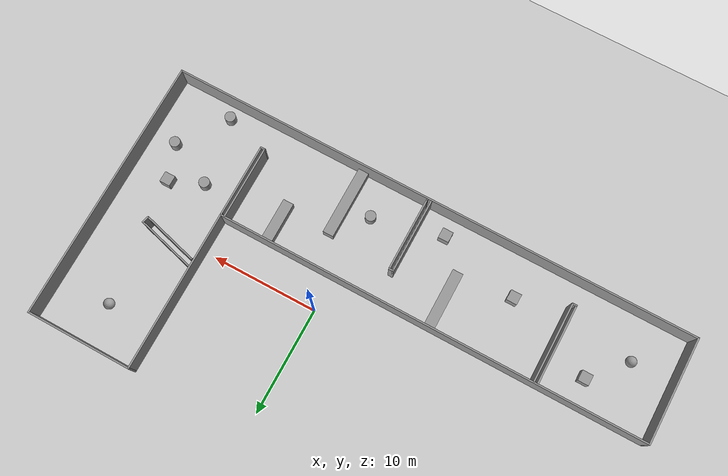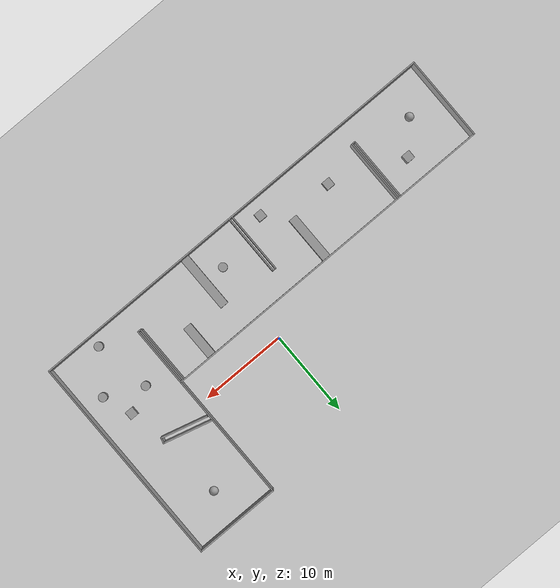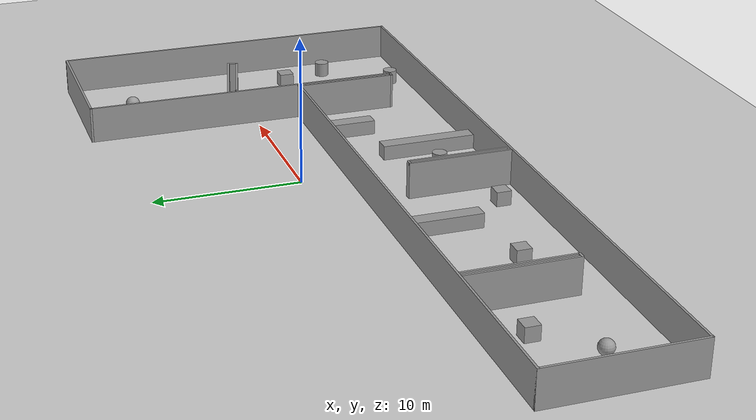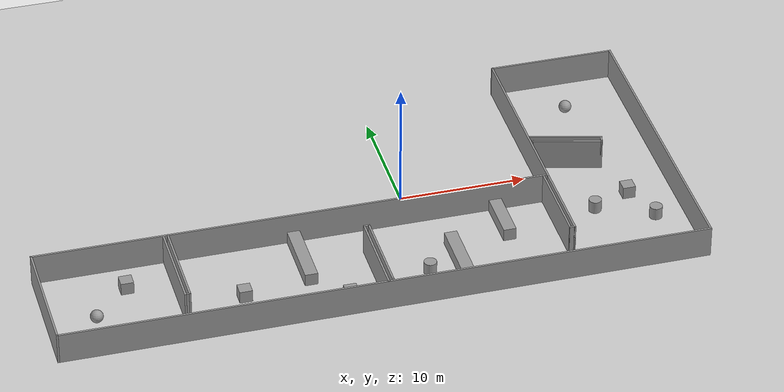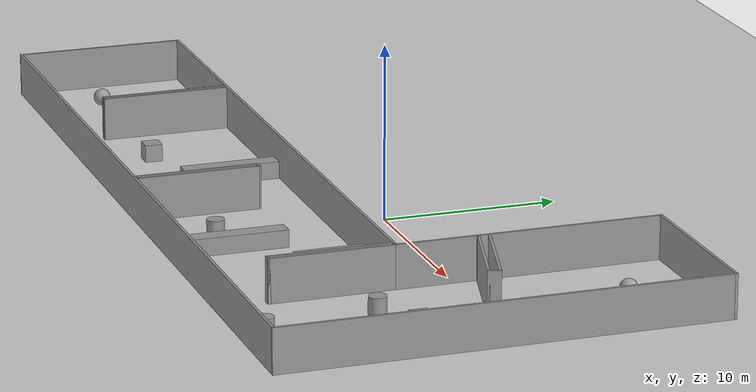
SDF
<sdf version="1.7">
 <world name="default">
  <light name="sun" type="directional">
   <pose>0 0 10 0 -0 0</pose>
   <diffuse>0.8 0.8 0.8 1</diffuse>
   <specular>0.2 0.2 0.2 1</specular>
   <attenuation>
    <range>1000</range>
    <constant>0.9</constant>
    <linear>0.01</linear>
    <quadratic>0.001</quadratic>
   </attenuation>
   <direction>-0.5 0.1 -0.9</direction>
   <spot><inner_angle>0</inner_angle><outer_angle>0</outer_angle><falloff>0</falloff></spot>
  </light>
  <model name="ground_plane">
   <static>1</static>
   <link name="link">
    <collision name="collision">
     <geometry><plane><normal>0 0 1</normal><size>100 100</size></plane></geometry>
     <surface><friction><ode><mu>100</mu><mu2>50</mu2></ode></friction></surface>
    </collision>
    <visual name="visual">
     <cast_shadows>0</cast_shadows>
     <geometry><plane><normal>0 0 1</normal><size>100 100</size></plane></geometry>
     <material>
      <script><uri>file://media/materials/scripts/gazebo.material</uri><name>Gazebo/Grey</name></script>
     </material>
    </visual>
   </link>
  </model>
  <gravity>0 0 -9.8</gravity>
  <magnetic_field>6e-06 2.3e-05 -4.2e-05</magnetic_field>
  <atmosphere type="adiabatic"/>
  <physics type="ode">
   <max_step_size>0.001</max_step_size>
   <real_time_factor>1</real_time_factor>
   <real_time_update_rate>1000</real_time_update_rate>
  </physics>
  <scene><ambient>0.4 0.4 0.4 1</ambient><background>0.7 0.7 0.7 1</background><shadows>1</shadows></scene>
  <spherical_coordinates>
   <surface_model>EARTH_WGS84</surface_model>
   <latitude_deg>0</latitude_deg>
   <longitude_deg>0</longitude_deg>
   <elevation>0</elevation>
   <heading_deg>0</heading_deg>
  </spherical_coordinates>
  <model name="world">
   <pose>-4.4237 -0.599 0 0 -0 0</pose>
   <link name="Wall_0">
    <collision name="Wall_0_Collision">
     <geometry><box><size>50.4595 0.15 2.5</size></box></geometry>
     <pose>0 0 1.25 0 -0 0</pose>
    </collision>
    <visual name="Wall_0_Visual">
     <pose>0 0 1.25 0 -0 0</pose>
     <geometry><box><size>50.4595 0.15 2.5</size></box></geometry>
     <material>
      <script><uri>file://media/materials/scripts/gazebo.material</uri><name>Gazebo/Grey</name></script>
      <ambient>1 1 1 1</ambient>
     </material>
     <meta><layer>0</layer></meta>
    </visual>
    <pose>0 -12.425 0 0 -0 0</pose>
   </link>
   <link name="Wall_1">
    <collision name="Wall_1_Collision">
     <geometry><box><size>25 0.15 2.5</size></box></geometry>
     <pose>0 0 1.25 0 -0 0</pose>
    </collision>
    <visual name="Wall_1_Visual">
     <pose>0 0 1.25 0 -0 0</pose>
     <geometry><box><size>25 0.15 2.5</size></box></geometry>
     <material>
      <script><uri>file://media/materials/scripts/gazebo.material</uri><name>Gazebo/Grey</name></script>
      <ambient>1 1 1 1</ambient>
     </material>
     <meta><layer>0</layer></meta>
    </visual>
    <pose>25.1548 0 0 0 -0 1.5708</pose>
   </link>
   <link name="Wall_11">
    <collision name="Wall_11_Collision">
     <geometry><box><size>7 0.15 2.5</size></box></geometry>
     <pose>0 0 1.25 0 -0 0</pose>
    </collision>
    <visual name="Wall_11_Visual">
     <pose>0 0 1.25 0 -0 0</pose>
     <geometry><box><size>7 0.15 2.5</size></box></geometry>
     <material>
      <script><uri>file://media/materials/scripts/gazebo.material</uri><name>Gazebo/Grey</name></script>
      <ambient>1 1 1 1</ambient>
     </material>
     <meta><layer>0</layer></meta>
    </visual>
    <pose>15.3048 -6.1 0 0 -0 -1.5708</pose>
   </link>
   <link name="Wall_12">
    <collision name="Wall_12_Collision">
     <geometry><box><size>0.5 0.15 2.5</size></box></geometry>
     <pose>0 0 1.25 0 -0 0</pose>
    </collision>
    <visual name="Wall_12_Visual">
     <pose>0 0 1.25 0 -0 0</pose>
     <geometry><box><size>0.5 0.15 2.5</size></box></geometry>
     <material>
      <script><uri>file://media/materials/scripts/gazebo.material</uri><name>Gazebo/Grey</name></script>
      <ambient>1 1 1 1</ambient>
     </material>
     <meta><layer>0</layer></meta>
    </visual>
    <pose>15.1298 -9.525 0 0 -0 3.14159</pose>
   </link>
   <link name="Wall_13">
    <collision name="Wall_13_Collision">
     <geometry><box><size>7 0.15 2.5</size></box></geometry>
     <pose>0 0 1.25 0 -0 0</pose>
    </collision>
    <visual name="Wall_13_Visual">
     <pose>0 0 1.25 0 -0 0</pose>
     <geometry><box><size>7 0.15 2.5</size></box></geometry>
     <material>
      <script><uri>file://media/materials/scripts/gazebo.material</uri><name>Gazebo/Grey</name></script>
      <ambient>1 1 1 1</ambient>
     </material>
     <meta><layer>0</layer></meta>
    </visual>
    <pose>14.9548 -6.1 0 0 -0 1.5708</pose>
   </link>
   <link name="Wall_15">
    <collision name="Wall_15_Collision">
     <geometry><box><size>7.25 0.15 2.5</size></box></geometry>
     <pose>0 0 1.25 0 -0 0</pose>
    </collision>
    <visual name="Wall_15_Visual">
     <pose>0 0 1.25 0 -0 0</pose>
     <geometry><box><size>7.25 0.15 2.5</size></box></geometry>
     <material>
      <script><uri>file://media/materials/scripts/gazebo.material</uri><name>Gazebo/Grey</name></script>
      <ambient>1 1 1 1</ambient>
     </material>
     <meta><layer>0</layer></meta>
    </visual>
    <pose>-0.062434 -8.86961 0 0 -0 1.5708</pose>
   </link>
   <link name="Wall_16">
    <collision name="Wall_16_Collision">
     <geometry><box><size>0.5 0.15 2.5</size></box></geometry>
     <pose>0 0 1.25 0 -0 0</pose>
    </collision>
    <visual name="Wall_16_Visual">
     <pose>0 0 1.25 0 -0 0</pose>
     <geometry><box><size>0.5 0.15 2.5</size></box></geometry>
     <material>
      <script><uri>file://media/materials/scripts/gazebo.material</uri><name>Gazebo/Grey</name></script>
      <ambient>1 1 1 1</ambient>
     </material>
     <meta><layer>0</layer></meta>
    </visual>
    <pose>0.112566 -5.31961 0 0 -0 0</pose>
   </link>
   <link name="Wall_19">
    <collision name="Wall_19_Collision">
     <geometry><box><size>0.15 0.15 2.5</size></box></geometry>
     <pose>0 0 1.25 0 -0 0</pose>
    </collision>
    <visual name="Wall_19_Visual">
     <pose>0 0 1.25 0 -0 0</pose>
     <geometry><box><size>0.15 0.15 2.5</size></box></geometry>
     <material>
      <script><uri>file://media/materials/scripts/gazebo.material</uri><name>Gazebo/Grey</name></script>
      <ambient>1 1 1 1</ambient>
     </material>
     <meta><layer>0</layer></meta>
    </visual>
    <pose>0.313448 -12.2662 0 0 -0 0</pose>
   </link>
   <link name="Wall_23">
    <collision name="Wall_23_Collision">
     <geometry><box><size>7 0.15 2.5</size></box></geometry>
     <pose>0 0 1.25 0 -0 0</pose>
    </collision>
    <visual name="Wall_23_Visual">
     <pose>0 0 1.25 0 -0 0</pose>
     <geometry><box><size>7 0.15 2.5</size></box></geometry>
     <material>
      <script><uri>file://media/materials/scripts/gazebo.material</uri><name>Gazebo/Grey</name></script>
      <ambient>1 1 1 1</ambient>
     </material>
     <meta><layer>0</layer></meta>
    </visual>
    <pose>0.313448 -8.84121 0 0 -0 1.5708</pose>
   </link>
   <link name="Wall_25">
    <collision name="Wall_25_Collision">
     <geometry><box><size>7.5 0.15 2.5</size></box></geometry>
     <pose>0 0 1.25 0 -0 0</pose>
    </collision>
    <visual name="Wall_25_Visual">
     <pose>0 0 1.25 0 -0 0</pose>
     <geometry><box><size>7.5 0.15 2.5</size></box></geometry>
     <material>
      <script><uri>file://media/materials/scripts/gazebo.material</uri><name>Gazebo/Grey</name></script>
      <ambient>1 1 1 1</ambient>
     </material>
     <meta><layer>0</layer></meta>
    </visual>
    <pose>-15.0255 -6.36832 0 0 -0 -1.5708</pose>
   </link>
   <link name="Wall_26">
    <collision name="Wall_26_Collision">
     <geometry><box><size>0.5 0.15 2.5</size></box></geometry>
     <pose>0 0 1.25 0 -0 0</pose>
    </collision>
    <visual name="Wall_26_Visual">
     <pose>0 0 1.25 0 -0 0</pose>
     <geometry><box><size>0.5 0.15 2.5</size></box></geometry>
     <material>
      <script><uri>file://media/materials/scripts/gazebo.material</uri><name>Gazebo/Grey</name></script>
      <ambient>1 1 1 1</ambient>
     </material>
     <meta><layer>0</layer></meta>
    </visual>
    <pose>-14.8505 -10.0433 0 0 -0 0</pose>
   </link>
   <link name="Wall_27">
    <collision name="Wall_27_Collision">
     <geometry><box><size>7.5 0.15 2.5</size></box></geometry>
     <pose>0 0 1.25 0 -0 0</pose>
    </collision>
    <visual name="Wall_27_Visual">
     <pose>0 0 1.25 0 -0 0</pose>
     <geometry><box><size>7.5 0.15 2.5</size></box></geometry>
     <material>
      <script><uri>file://media/materials/scripts/gazebo.material</uri><name>Gazebo/Grey</name></script>
      <ambient>1 1 1 1</ambient>
     </material>
     <meta><layer>0</layer></meta>
    </visual>
    <pose>-14.6755 -6.36832 0 0 -0 1.5708</pose>
   </link>
   <link name="Wall_29">
    <collision name="Wall_29_Collision">
     <geometry><box><size>5.75 0.15 2.5</size></box></geometry>
     <pose>0 0 1.25 0 -0 0</pose>
    </collision>
    <visual name="Wall_29_Visual">
     <pose>0 0 1.25 0 -0 0</pose>
     <geometry><box><size>5.75 0.15 2.5</size></box></geometry>
     <material>
      <script><uri>file://media/materials/scripts/gazebo.material</uri><name>Gazebo/Grey</name></script>
      <ambient>1 1 1 1</ambient>
     </material>
     <meta><layer>0</layer></meta>
    </visual>
    <pose>18.1263 1.88829 0 0 -0 -0.261799</pose>
   </link>
   <link name="Wall_3">
    <collision name="Wall_3_Collision">
     <geometry><box><size>10 0.15 2.5</size></box></geometry>
     <pose>0 0 1.25 0 -0 0</pose>
    </collision>
    <visual name="Wall_3_Visual">
     <pose>0 0 1.25 0 -0 0</pose>
     <geometry><box><size>10 0.15 2.5</size></box></geometry>
     <material>
      <script><uri>file://media/materials/scripts/gazebo.material</uri><name>Gazebo/Grey</name></script>
      <ambient>1 1 1 1</ambient>
     </material>
     <meta><layer>0</layer></meta>
    </visual>
    <pose>-25.1548 -7.5 0 0 -0 1.5708</pose>
   </link>
   <link name="Wall_30">
    <collision name="Wall_30_Collision">
     <geometry><box><size>0.75 0.15 2.5</size></box></geometry>
     <pose>0 0 1.25 0 -0 0</pose>
    </collision>
    <visual name="Wall_30_Visual">
     <pose>0 0 1.25 0 -0 0</pose>
     <geometry><box><size>0.75 0.15 2.5</size></box></geometry>
     <material>
      <script><uri>file://media/materials/scripts/gazebo.material</uri><name>Gazebo/Grey</name></script>
      <ambient>1 1 1 1</ambient>
     </material>
     <meta><layer>0</layer></meta>
    </visual>
    <pose>20.7533 0.873817 0 0 -0 -1.8326</pose>
   </link>
   <link name="Wall_31">
    <collision name="Wall_31_Collision">
     <geometry><box><size>5.5 0.15 2.5</size></box></geometry>
     <pose>0 0 1.25 0 -0 0</pose>
    </collision>
    <visual name="Wall_31_Visual">
     <pose>0 0 1.25 0 -0 0</pose>
     <geometry><box><size>5.5 0.15 2.5</size></box></geometry>
     <material>
      <script><uri>file://media/materials/scripts/gazebo.material</uri><name>Gazebo/Grey</name></script>
      <ambient>1 1 1 1</ambient>
     </material>
     <meta><layer>0</layer></meta>
    </visual>
    <pose>18.0918 1.27638 0 0 -0 2.87979</pose>
   </link>
   <link name="Wall_32">
    <collision name="Wall_32_Collision">
     <geometry><box><size>0.15 0.15 2.5</size></box></geometry>
     <pose>0 0 1.25 0 -0 0</pose>
    </collision>
    <visual name="Wall_32_Visual">
     <pose>0 0 1.25 0 -0 0</pose>
     <geometry><box><size>0.15 0.15 2.5</size></box></geometry>
     <material>
      <script><uri>file://media/materials/scripts/gazebo.material</uri><name>Gazebo/Grey</name></script>
      <ambient>1 1 1 1</ambient>
     </material>
     <meta><layer>0</layer></meta>
    </visual>
    <pose>15.5079 1.96872 0 0 -0 0</pose>
   </link>
   <link name="Wall_5">
    <collision name="Wall_5_Collision">
     <geometry><box><size>40.5 0.15 2.5</size></box></geometry>
     <pose>0 0 1.25 0 -0 0</pose>
    </collision>
    <visual name="Wall_5_Visual">
     <pose>0 0 1.25 0 -0 0</pose>
     <geometry><box><size>40.5 0.15 2.5</size></box></geometry>
     <material>
      <script><uri>file://media/materials/scripts/gazebo.material</uri><name>Gazebo/Grey</name></script>
      <ambient>1 1 1 1</ambient>
     </material>
     <meta><layer>0</layer></meta>
    </visual>
    <pose>-4.97977 -2.575 0 0 -0 0</pose>
   </link>
   <link name="Wall_7">
    <collision name="Wall_7_Collision">
     <geometry><box><size>10 0.15 2.5</size></box></geometry>
     <pose>0 0 1.25 0 -0 0</pose>
    </collision>
    <visual name="Wall_7_Visual">
     <pose>0 0 1.25 0 -0 0</pose>
     <geometry><box><size>10 0.15 2.5</size></box></geometry>
     <material>
      <script><uri>file://media/materials/scripts/gazebo.material</uri><name>Gazebo/Grey</name></script>
      <ambient>1 1 1 1</ambient>
     </material>
     <meta><layer>0</layer></meta>
    </visual>
    <pose>20.2298 12.425 0 0 -0 3.14159</pose>
   </link>
   <link name="Wall_9">
    <collision name="Wall_9_Collision">
     <geometry><box><size>15.25 0.15 2.5</size></box></geometry>
     <pose>0 0 1.25 0 -0 0</pose>
    </collision>
    <visual name="Wall_9_Visual">
     <pose>0 0 1.25 0 -0 0</pose>
     <geometry><box><size>15.25 0.15 2.5</size></box></geometry>
     <material>
      <script><uri>file://media/materials/scripts/gazebo.material</uri><name>Gazebo/Grey</name></script>
      <ambient>1 1 1 1</ambient>
     </material>
     <meta><layer>0</layer></meta>
    </visual>
    <pose>15.3048 4.875 0 0 -0 -1.5708</pose>
   </link>
   <static>1</static>
  </model>
  <model name="unit_box">
   <pose>6.63894 -5.28376 0.49924 -0.000379 -0 -7e-06</pose>
   <link name="link">
    <inertial>
     <mass>1</mass>
     <inertia>
      <ixx>0.166667</ixx>
      <ixy>0</ixy>
      <ixz>0</ixz>
      <iyy>0.166667</iyy>
      <iyz>0</iyz>
      <izz>0.166667</izz>
     </inertia>
    </inertial>
    <collision name="collision"><geometry><box><size>1 4.01501 1</size></box></geometry></collision>
    <visual name="visual">
     <geometry><box><size>1 4.01501 1</size></box></geometry>
     <material>
      <script><name>Gazebo/Grey</name><uri>file://media/materials/scripts/gazebo.material</uri></script>
     </material>
    </visual>
   </link>
  </model>
  <model name="unit_cylinder_0">
   <pose>-0.325793 -9.6206 0.499998 3e-06 -2e-06 0</pose>
   <link name="link">
    <inertial>
     <mass>1</mass>
     <inertia><ixx>0.145833</ixx><ixy>0</ixy><ixz>0</ixz><iyy>0.145833</iyy><iyz>0</iyz><izz>0.125</izz></inertia>
    </inertial>
    <collision name="collision">
     <geometry><cylinder><radius>0.5</radius><length>1</length></cylinder></geometry>
    </collision>
    <visual name="visual">
     <geometry><cylinder><radius>0.5</radius><length>1</length></cylinder></geometry>
     <material>
      <script><name>Gazebo/Grey</name><uri>file://media/materials/scripts/gazebo.material</uri></script>
     </material>
    </visual>
   </link>
  </model>
  <model name="unit_box_0">
   <pose>-9.37039 -6.03714 0.496523 0.001247 -0 1.4e-05</pose>
   <link name="link">
    <inertial>
     <mass>1</mass>
     <inertia>
      <ixx>0.166667</ixx>
      <ixy>0</ixy>
      <ixz>0</ixz>
      <iyy>0.166667</iyy>
      <iyz>0</iyz>
      <izz>0.166667</izz>
     </inertia>
    </inertial>
    <collision name="collision"><geometry><box><size>1 5.57603 1</size></box></geometry></collision>
    <visual name="visual">
     <geometry><box><size>1 5.57603 1</size></box></geometry>
     <material>
      <script><name>Gazebo/Grey</name><uri>file://media/materials/scripts/gazebo.material</uri></script>
     </material>
    </visual>
   </link>
  </model>
  <model name="unit_box_1">
   <pose>-6.91736 -11.2319 0.499995 0 -1e-05 0</pose>
   <link name="link">
    <inertial>
     <mass>1</mass>
     <inertia>
      <ixx>0.166667</ixx>
      <ixy>0</ixy>
      <ixz>0</ixz>
      <iyy>0.166667</iyy>
      <iyz>0</iyz>
      <izz>0.166667</izz>
     </inertia>
    </inertial>
    <collision name="collision"><geometry><box><size>1 1 1</size></box></geometry></collision>
    <visual name="visual">
     <geometry><box><size>1 1 1</size></box></geometry>
     <material>
      <script><name>Gazebo/Grey</name><uri>file://media/materials/scripts/gazebo.material</uri></script>
     </material>
    </visual>
   </link>
  </model>
  <model name="unit_box_2">
   <pose>-14.6072 -9.14366 0.5 -0 -0 -0.00243</pose>
   <link name="link">
    <inertial>
     <mass>1</mass>
     <inertia>
      <ixx>0.166667</ixx>
      <ixy>0</ixy>
      <ixz>0</ixz>
      <iyy>0.166667</iyy>
      <iyz>0</iyz>
      <izz>0.166667</izz>
     </inertia>
    </inertial>
    <collision name="collision"><geometry><box><size>1 1 1</size></box></geometry></collision>
    <visual name="visual">
     <geometry><box><size>1 1 1</size></box></geometry>
     <material>
      <script><name>Gazebo/Grey</name><uri>file://media/materials/scripts/gazebo.material</uri></script>
     </material>
    </visual>
   </link>
  </model>
  <model name="unit_box_3">
   <pose>-22.9569 -5.84419 0.499995 0 -1e-05 0</pose>
   <link name="link">
    <inertial>
     <mass>1</mass>
     <inertia>
      <ixx>0.166667</ixx>
      <ixy>0</ixy>
      <ixz>0</ixz>
      <iyy>0.166667</iyy>
      <iyz>0</iyz>
      <izz>0.166667</izz>
     </inertia>
    </inertial>
    <collision name="collision"><geometry><box><size>1 1 1</size></box></geometry></collision>
    <visual name="visual">
     <geometry><box><size>1 1 1</size></box></geometry>
     <material>
      <script><name>Gazebo/Grey</name><uri>file://media/materials/scripts/gazebo.material</uri></script>
     </material>
    </visual>
   </link>
  </model>
  <model name="unit_cylinder_1">
   <pose>15.2114 -11.7218 0.499992 -3e-06 3e-06 0</pose>
   <link name="link">
    <inertial>
     <mass>1</mass>
     <inertia><ixx>0.145833</ixx><ixy>0</ixy><ixz>0</ixz><iyy>0.145833</iyy><iyz>0</iyz><izz>0.125</izz></inertia>
    </inertial>
    <collision name="collision">
     <geometry><cylinder><radius>0.5</radius><length>1</length></cylinder></geometry>
    </collision>
    <visual name="visual">
     <geometry><cylinder><radius>0.5</radius><length>1</length></cylinder></geometry>
     <material>
      <script><name>Gazebo/Grey</name><uri>file://media/materials/scripts/gazebo.material</uri></script>
     </material>
    </visual>
   </link>
  </model>
  <model name="unit_cylinder_2">
   <pose>18.3608 -7.29826 0.499994 -4e-06 -3e-06 -0</pose>
   <link name="link">
    <inertial>
     <mass>1</mass>
     <inertia><ixx>0.145833</ixx><ixy>0</ixy><ixz>0</ixz><iyy>0.145833</iyy><iyz>0</iyz><izz>0.125</izz></inertia>
    </inertial>
    <collision name="collision">
     <geometry><cylinder><radius>0.5</radius><length>1</length></cylinder></geometry>
    </collision>
    <visual name="visual">
     <geometry><cylinder><radius>0.5</radius><length>1</length></cylinder></geometry>
     <material>
      <script><name>Gazebo/Grey</name><uri>file://media/materials/scripts/gazebo.material</uri></script>
     </material>
    </visual>
   </link>
  </model>
  <model name="unit_cylinder_3">
   <pose>14.1059 -5.29085 0.499993 -0 -0 -0</pose>
   <link name="link">
    <inertial>
     <mass>1</mass>
     <inertia><ixx>0.145833</ixx><ixy>0</ixy><ixz>0</ixz><iyy>0.145833</iyy><iyz>0</iyz><izz>0.125</izz></inertia>
    </inertial>
    <collision name="collision">
     <geometry><cylinder><radius>0.499998</radius><length>1</length></cylinder></geometry>
    </collision>
    <visual name="visual">
     <geometry><cylinder><radius>0.499998</radius><length>1</length></cylinder></geometry>
     <material>
      <script><name>Gazebo/Grey</name><uri>file://media/materials/scripts/gazebo.material</uri></script>
     </material>
    </visual>
   </link>
  </model>
  <model name="unit_box_4">
   <pose>17.1257 -4.0136 0.5 0 -0 1.6e-05</pose>
   <link name="link">
    <inertial>
     <mass>1</mass>
     <inertia>
      <ixx>0.166667</ixx>
      <ixy>0</ixy>
      <ixz>0</ixz>
      <iyy>0.166667</iyy>
      <iyz>0</iyz>
      <izz>0.166667</izz>
     </inertia>
    </inertial>
    <collision name="collision"><geometry><box><size>0.999998 1 1</size></box></geometry></collision>
    <visual name="visual">
     <geometry><box><size>0.999998 1 1</size></box></geometry>
     <material>
      <script><name>Gazebo/Grey</name><uri>file://media/materials/scripts/gazebo.material</uri></script>
     </material>
    </visual>
   </link>
  </model>
  <model name="unit_sphere">
   <pose>15.8179 7.9594 0.5 0 -0 0</pose>
   <link name="link">
    <inertial>
     <mass>1</mass>
     <inertia><ixx>0.1</ixx><ixy>0</ixy><ixz>0</ixz><iyy>0.1</iyy><iyz>0</iyz><izz>0.1</izz></inertia>
    </inertial>
    <collision name="collision"><geometry><sphere><radius>0.5</radius></sphere></geometry></collision>
    <visual name="visual">
     <geometry><sphere><radius>0.5</radius></sphere></geometry>
     <material>
      <script><name>Gazebo/Grey</name><uri>file://media/materials/scripts/gazebo.material</uri></script>
     </material>
    </visual>
   </link>
  </model>
  <model name="unit_sphere_0">
   <pose>-25.8614 -9.02301 0.5 0 -0 0</pose>
   <link name="link">
    <inertial>
     <mass>1</mass>
     <inertia><ixx>0.1</ixx><ixy>0</ixy><ixz>0</ixz><iyy>0.1</iyy><iyz>0</iyz><izz>0.1</izz></inertia>
    </inertial>
    <collision name="collision"><geometry><sphere><radius>0.5</radius></sphere></geometry></collision>
    <visual name="visual">
     <geometry><sphere><radius>0.5</radius></sphere></geometry>
     <material>
      <script><name>Gazebo/Grey</name><uri>file://media/materials/scripts/gazebo.material</uri></script>
     </material>
    </visual>
   </link>
  </model>
  <model name="unit_box_clone">
   <pose>2.17016 -9.66523 0.492934 -0.002161 -1e-06 -0.000281</pose>
   <link name="link">
    <inertial>
     <mass>1</mass>
     <inertia>
      <ixx>0.166667</ixx>
      <ixy>0</ixy>
      <ixz>0</ixz>
      <iyy>0.166667</iyy>
      <iyz>0</iyz>
      <izz>0.166667</izz>
     </inertia>
    </inertial>
    <collision name="collision"><geometry><box><size>1 6.54365 1</size></box></geometry></collision>
    <visual name="visual">
     <geometry><box><size>1 6.54365 1</size></box></geometry>
     <material>
      <script><name>Gazebo/Grey</name><uri>file://media/materials/scripts/gazebo.material</uri></script>
     </material>
    </visual>
   </link>
  </model>
 </world>
</sdf>
